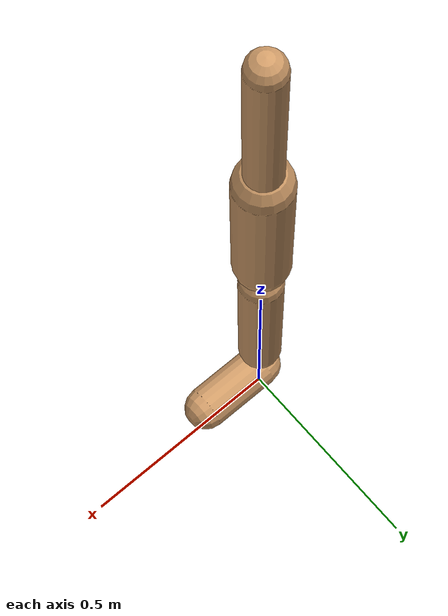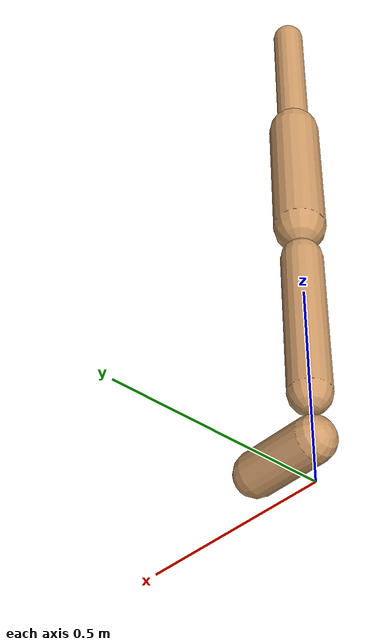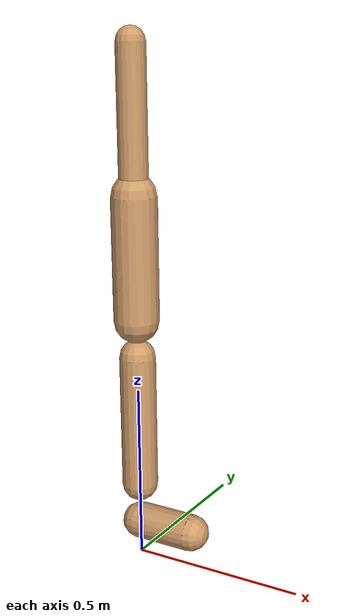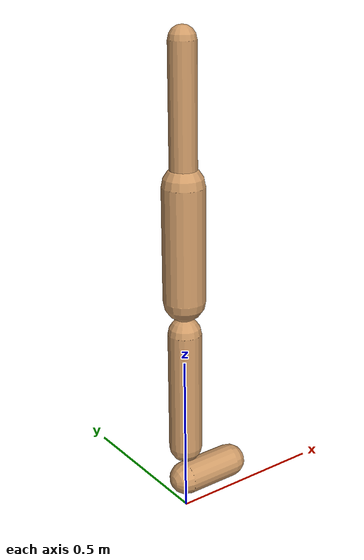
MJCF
<mujoco model="walker2d">
  <compiler angle="degree" coordinate="global" inertiafromgeom="true" />
  <default>
    <joint armature="0.01" damping=".1" limited="true" />
    <geom conaffinity="0" condim="3" contype="1" density="1000" friction="0.8 .1 .1" rgba="0.8 0.6 .4 1" />
  </default>
  <option integrator="RK4" timestep="0.002" />
  <worldbody>

    <body name="torso" pos="0 0 -0.2243059610031891">
      <joint armature="0" axis="1 0 0" damping="0" limited="false" name="ignorex" pos="0 0 0" stiffness="0" type="slide" />
      <joint armature="0" axis="0 0 1" damping="0" limited="false" name="ignorez" pos="0 0 0" ref="1.25" stiffness="0" type="slide" />
      <joint armature="0" axis="0 1 0" damping="0" limited="false" name="ignorey" pos="0 0 0" stiffness="0" type="hinge" />
      <geom fromto="0 0 1.45 0 0 1.05" name="torso_geom" size="0.040234570976390854" type="capsule" />
      <body name="thigh">
        <joint axis="0 -1 0" name="thigh_joint" pos="0 0 1.05" range="-150 0" type="hinge" />
        <geom fromto="0.0 0.0 1.05 0.0 0.0 0.7062501920541422" name="thigh_geom" size="0.0634139993158553" type="capsule" />
        <body name="leg" pos="0.0 0.0 0.10625019205414221">
          <joint axis="0 -1 0" name="leg_joint" pos="0 0 0.6" range="-150 0" type="hinge" />
          <geom fromto="0.0 0.0 0.6 0.0 0.0 0.21805576894904688" name="leg_geom" size="0.050731199452684235" type="capsule" />
          <body name="foot" pos="0.0 0.0 0.11805576894904687">
            <joint axis="0 -1 0" name="foot_joint" pos="0 0 0.1" range="-45 45" type="hinge" />
            <geom fromto="0.0 0.0 0.1 0.16844665945460666 0.0 0.1" name="foot_geom" size="0.05189786542851182" type="capsule" />
          </body>
        </body>
      </body>

      <body name="thigh_left">
        <joint axis="0 -1 0" name="thigh_left_joint" pos="0 0 1.05" range="-150 0" type="hinge" />
        <geom fromto="0.0 0.0 1.05 0.0 0.0 0.7062501920541422" name="thigh_left_geom" rgba=".7 .3 .6 1" size="0.0634139993158553" type="capsule" />
        <body name="leg_left" pos="0.0 0.0 0.10625019205414221">
          <joint axis="0 -1 0" name="leg_left_joint" pos="0 0 0.6" range="-150 0" type="hinge" />
          <geom fromto="0.0 0.0 0.6 0.0 0.0 0.21805576894904688" name="leg_left_geom" rgba=".7 .3 .6 1" size="0.050731199452684235" type="capsule" />
          <body name="foot_left" pos="0.0 0.0 0.11805576894904687">
            <joint axis="0 -1 0" name="foot_left_joint" pos="0 0 0.1" range="-45 45" type="hinge" />
            <geom fromto="0.0 0.0 0.1 0.16844665945460666 0.0 0.1" name="foot_left_geom" rgba=".7 .3 .6 1" size="0.05189786542851182" type="capsule" />
          </body>
        </body>
      </body>
    </body>
  </worldbody>
  <actuator>

    <motor ctrllimited="true" ctrlrange="-1.0 1.0" gear="100" joint="thigh_joint" />
    <motor ctrllimited="true" ctrlrange="-1.0 1.0" gear="100" joint="leg_joint" />
    <motor ctrllimited="true" ctrlrange="-1.0 1.0" gear="100" joint="foot_joint" />
    <motor ctrllimited="true" ctrlrange="-1.0 1.0" gear="100" joint="thigh_left_joint" />
    <motor ctrllimited="true" ctrlrange="-1.0 1.0" gear="100" joint="leg_left_joint" />
    <motor ctrllimited="true" ctrlrange="-1.0 1.0" gear="100" joint="foot_left_joint" />

  </actuator>
</mujoco>
